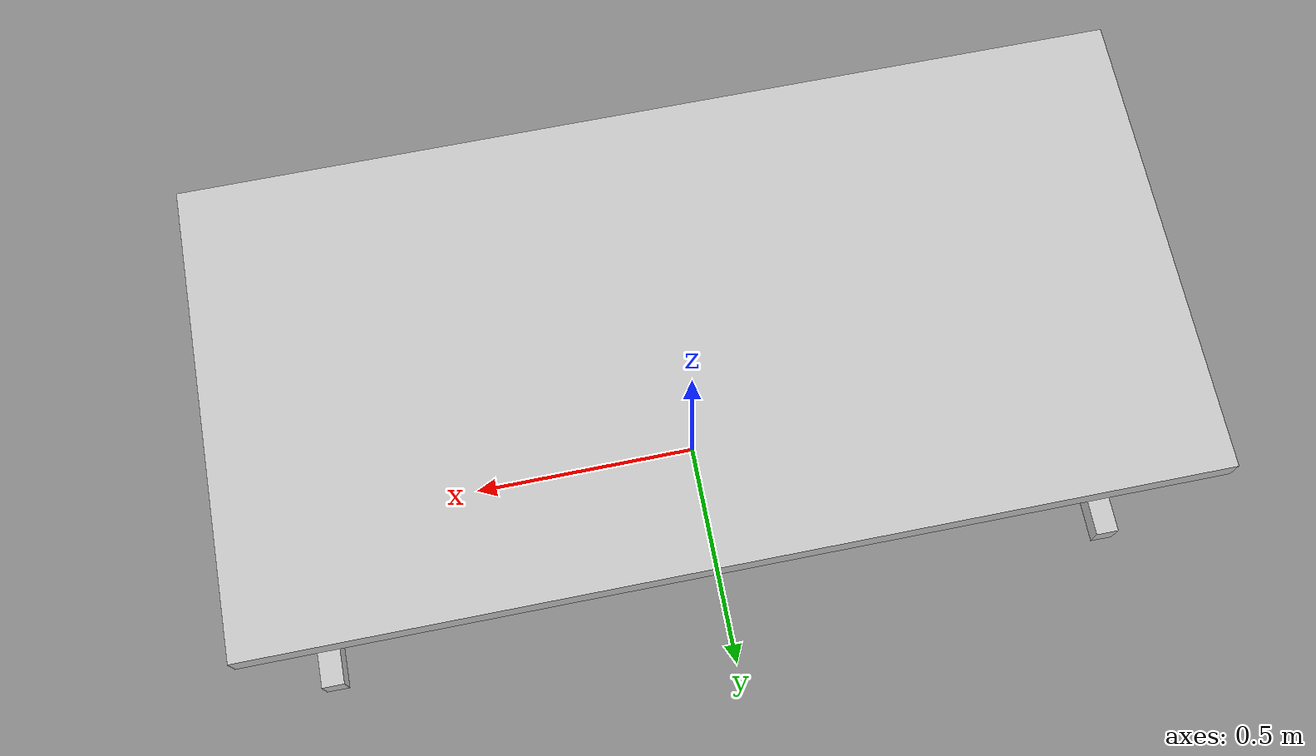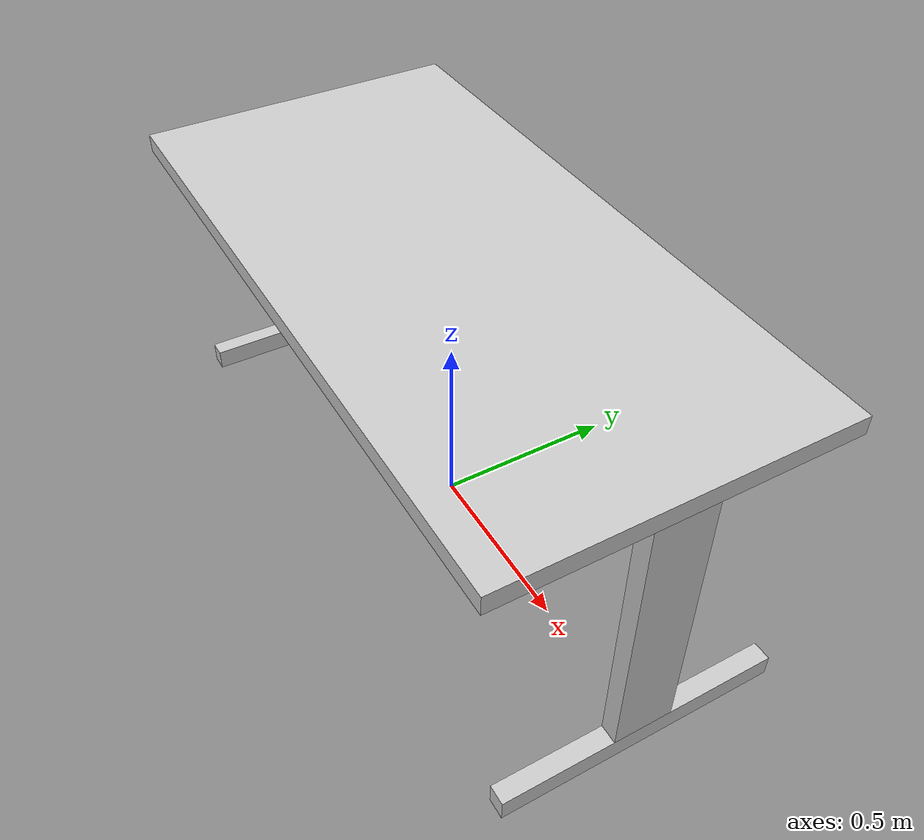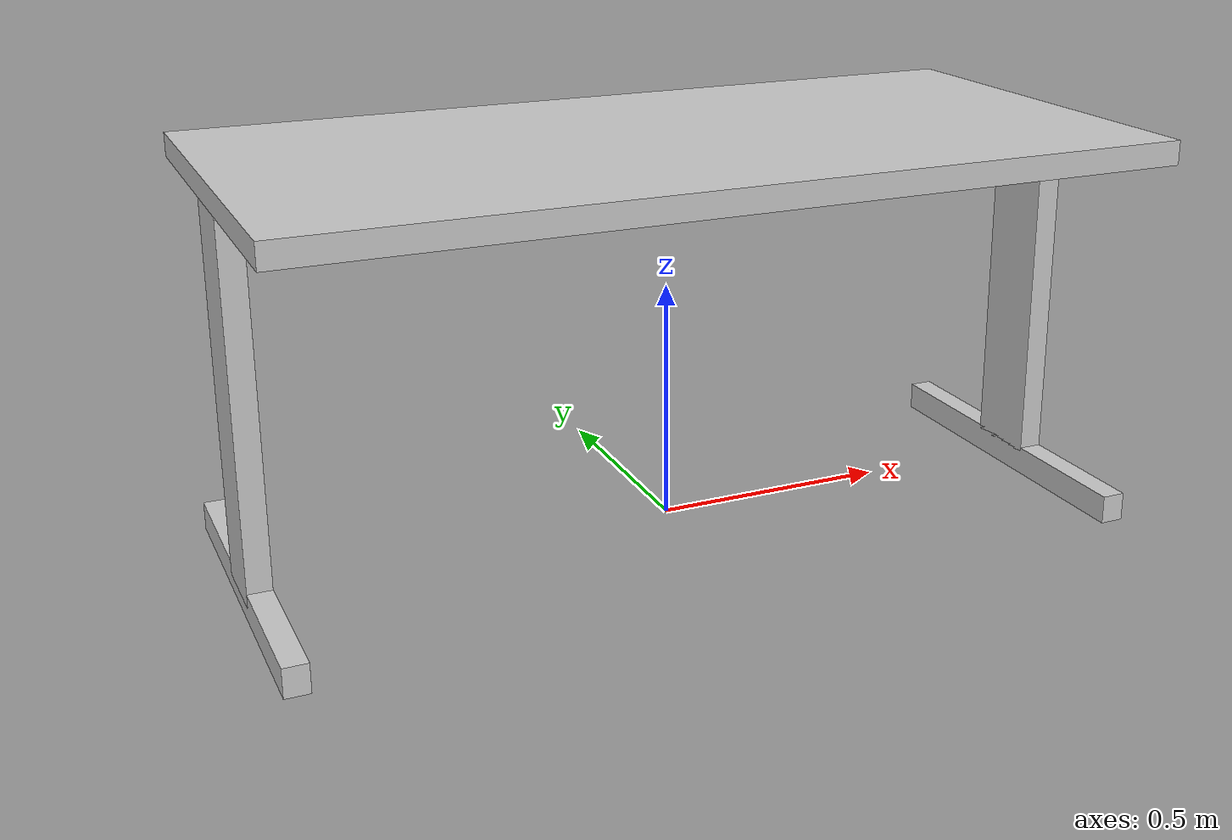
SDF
<?xml version="1.0"?>
<sdf version="1.6">
  <model name="table_2legs_180x80x76">
    <link name="1_link">
      <collision name="1_col">
        <geometry>
          <box>
            <size>1.8 0.9 0.05</size>
          </box>
        </geometry>
      </collision>
      <visual name="1_vis">
        <geometry>
          <box>
            <size>1.8 0.9 0.05</size>
          </box>
        </geometry>
        <material>
          <ambient>0.8 0.8 0.8 1</ambient>
        </material>
      </visual>
      <pose>0 0 0.785 0 0 0</pose>
    </link>
    <link name="2_link">
      <collision name="2_col">
        <geometry>
          <box>
            <size>0.05 0.16 0.76</size>
          </box>
        </geometry>
      </collision>
      <visual name="2_vis">
        <geometry>
          <box>
            <size>0.05 0.16 0.76</size>
          </box>
        </geometry>
        <material>
          <ambient>0.8 0.8 0.8 1</ambient>
        </material>
      </visual>
      <pose>-0.875 0 0.38 0 0 0</pose>
    </link>
    <link name="3_link">
      <collision name="3_col">
        <geometry>
          <box>
            <size>0.05 0.16 0.76</size>
          </box>
        </geometry>
      </collision>
      <visual name="3_vis">
        <geometry>
          <box>
            <size>0.05 0.16 0.76</size>
          </box>
        </geometry>
        <material>
          <ambient>0.8 0.8 0.8 1</ambient>
        </material>
      </visual>
      <pose>0.875 0 0.38 0 0 0</pose>
    </link>
    <link name="4_link">
      <collision name="4_col">
        <geometry>
          <box>
            <size>0.05 0.76 0.06</size>
          </box>
        </geometry>
      </collision>
      <visual name="4_vis">
        <geometry>
          <box>
            <size>0.05 0.76 0.06</size>
          </box>
        </geometry>
        <material>
          <ambient>0.8 0.8 0.8 1</ambient>
        </material>
      </visual>
      <pose>-0.875 0 0 0 0 0</pose>
    </link>
    <link name="5_link">
      <collision name="5_col">
        <geometry>
          <box>
            <size>0.05 0.76 0.06</size>
          </box>
        </geometry>
      </collision>
      <visual name="5_vis">
        <geometry>
          <box>
            <size>0.05 0.76 0.06</size>
          </box>
        </geometry>
        <material>
          <ambient>0.8 0.8 0.8 1</ambient>
        </material>
      </visual>
      <pose>0.875 0 0.0 0 0 0</pose>
    </link>
    <static>true</static>
  </model>
</sdf>
